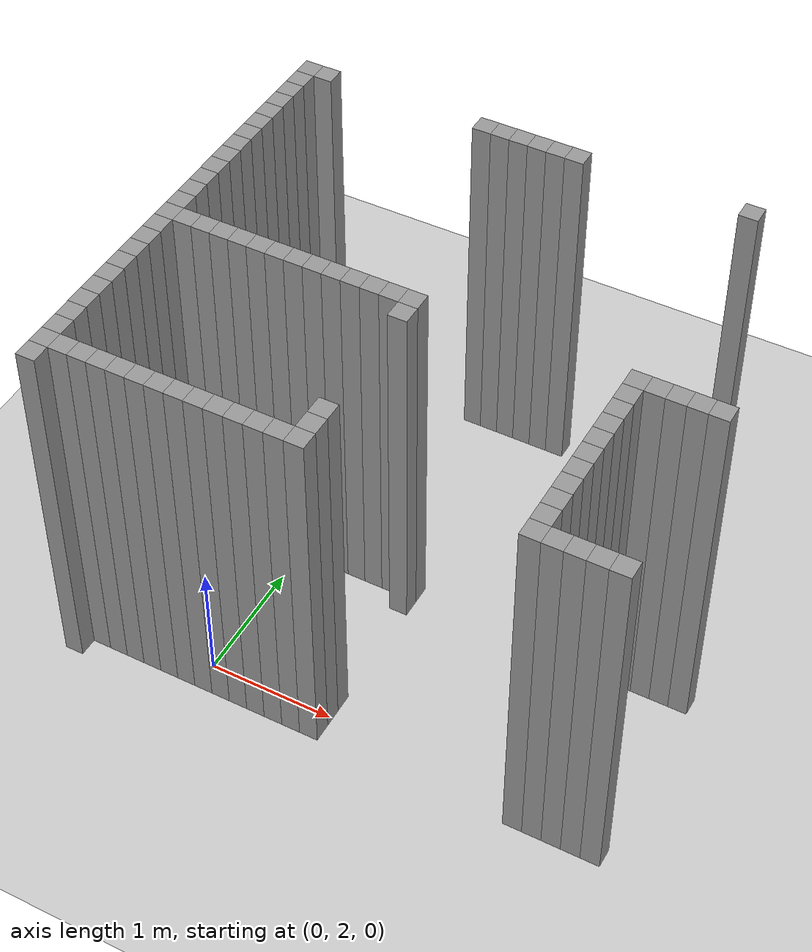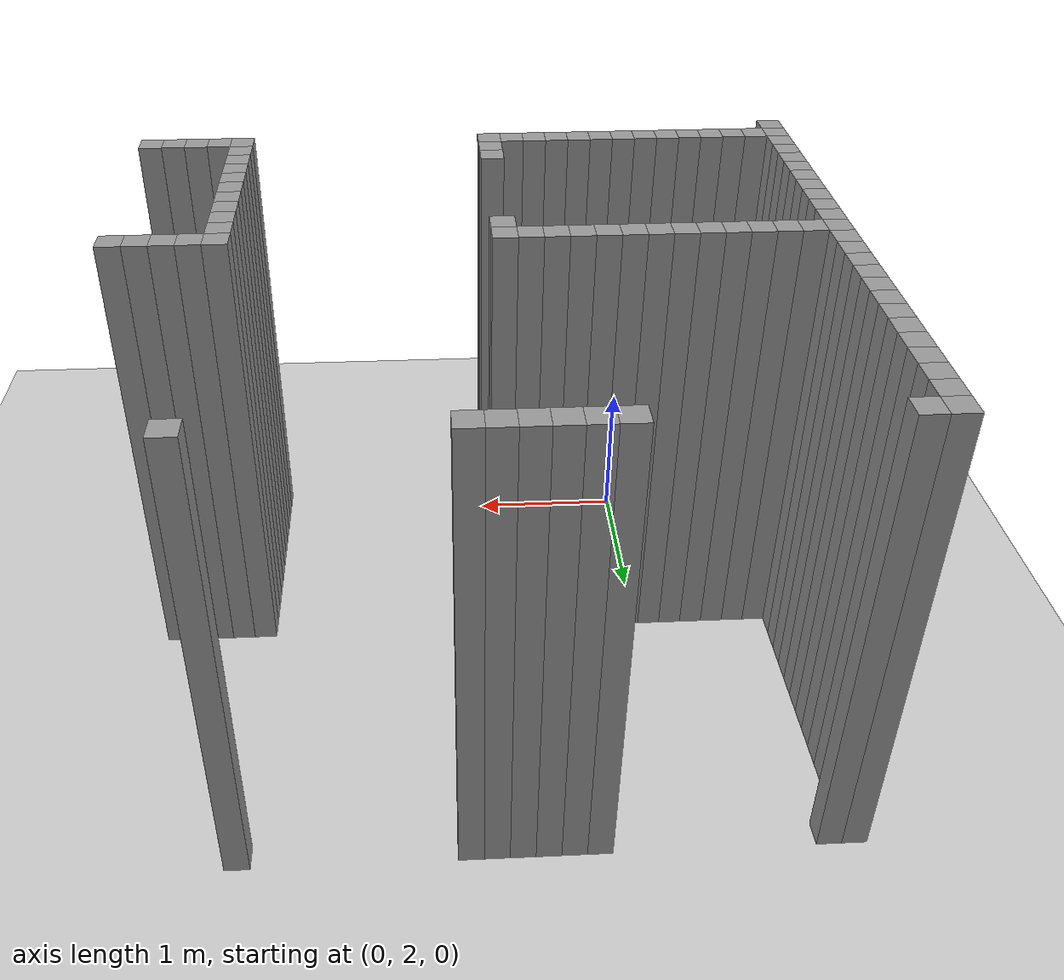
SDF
<sdf version="1.7">
 <world name="default">
  <model name="ground_plane">
   <static>1</static>
   <link name="link">
    <collision name="collision">
     <geometry><plane><normal>0 0 1</normal><size>100 100</size></plane></geometry>
     <surface>
      <contact><collide_bitmask>65535</collide_bitmask></contact>
      <friction><ode><mu>100</mu><mu2>50</mu2></ode></friction>
     </surface>
    </collision>
    <visual name="visual">
     <cast_shadows>0</cast_shadows>
     <geometry><plane><normal>0 0 1</normal><size>100 100</size></plane></geometry>
     <material>
      <script><uri>file://media/materials/scripts/gazebo.material</uri><name>Gazebo/Grey</name></script>
     </material>
    </visual>
   </link>
  </model>
  <model name="image45004">
   <pose>-1 -1 0 0 -0 0</pose>
   <link name="Wall_18">
    <collision name="Wall_18_Collision">
     <geometry><box><size>0.15 0.15 3</size></box></geometry>
     <pose>0 0 1.5 0 -0 0</pose>
    </collision>
    <visual name="Wall_18_Visual">
     <pose>0 0 1.5 0 -0 0</pose>
     <geometry><box><size>0.15 0.15 3</size></box></geometry>
     <material>
      <script><uri>file://media/materials/scripts/gazebo.material</uri><name>Gazebo/Grey</name></script>
      <ambient>1 1 1 1</ambient>
     </material>
     <meta><layer>0</layer></meta>
    </visual>
    <pose>0.0 2.6999999999999997 0 0 -0 0</pose>
   </link>
   <link name="Wall_19">
    <collision name="Wall_19_Collision">
     <geometry><box><size>0.15 0.15 3</size></box></geometry>
     <pose>0 0 1.5 0 -0 0</pose>
    </collision>
    <visual name="Wall_19_Visual">
     <pose>0 0 1.5 0 -0 0</pose>
     <geometry><box><size>0.15 0.15 3</size></box></geometry>
     <material>
      <script><uri>file://media/materials/scripts/gazebo.material</uri><name>Gazebo/Grey</name></script>
      <ambient>1 1 1 1</ambient>
     </material>
     <meta><layer>0</layer></meta>
    </visual>
    <pose>0.0 2.85 0 0 -0 0</pose>
   </link>
   <link name="Wall_20">
    <collision name="Wall_20_Collision">
     <geometry><box><size>0.15 0.15 3</size></box></geometry>
     <pose>0 0 1.5 0 -0 0</pose>
    </collision>
    <visual name="Wall_20_Visual">
     <pose>0 0 1.5 0 -0 0</pose>
     <geometry><box><size>0.15 0.15 3</size></box></geometry>
     <material>
      <script><uri>file://media/materials/scripts/gazebo.material</uri><name>Gazebo/Grey</name></script>
      <ambient>1 1 1 1</ambient>
     </material>
     <meta><layer>0</layer></meta>
    </visual>
    <pose>0.0 3.0 0 0 -0 0</pose>
   </link>
   <link name="Wall_21">
    <collision name="Wall_21_Collision">
     <geometry><box><size>0.15 0.15 3</size></box></geometry>
     <pose>0 0 1.5 0 -0 0</pose>
    </collision>
    <visual name="Wall_21_Visual">
     <pose>0 0 1.5 0 -0 0</pose>
     <geometry><box><size>0.15 0.15 3</size></box></geometry>
     <material>
      <script><uri>file://media/materials/scripts/gazebo.material</uri><name>Gazebo/Grey</name></script>
      <ambient>1 1 1 1</ambient>
     </material>
     <meta><layer>0</layer></meta>
    </visual>
    <pose>0.0 3.15 0 0 -0 0</pose>
   </link>
   <link name="Wall_22">
    <collision name="Wall_22_Collision">
     <geometry><box><size>0.15 0.15 3</size></box></geometry>
     <pose>0 0 1.5 0 -0 0</pose>
    </collision>
    <visual name="Wall_22_Visual">
     <pose>0 0 1.5 0 -0 0</pose>
     <geometry><box><size>0.15 0.15 3</size></box></geometry>
     <material>
      <script><uri>file://media/materials/scripts/gazebo.material</uri><name>Gazebo/Grey</name></script>
      <ambient>1 1 1 1</ambient>
     </material>
     <meta><layer>0</layer></meta>
    </visual>
    <pose>0.0 3.3 0 0 -0 0</pose>
   </link>
   <link name="Wall_23">
    <collision name="Wall_23_Collision">
     <geometry><box><size>0.15 0.15 3</size></box></geometry>
     <pose>0 0 1.5 0 -0 0</pose>
    </collision>
    <visual name="Wall_23_Visual">
     <pose>0 0 1.5 0 -0 0</pose>
     <geometry><box><size>0.15 0.15 3</size></box></geometry>
     <material>
      <script><uri>file://media/materials/scripts/gazebo.material</uri><name>Gazebo/Grey</name></script>
      <ambient>1 1 1 1</ambient>
     </material>
     <meta><layer>0</layer></meta>
    </visual>
    <pose>0.0 3.4499999999999997 0 0 -0 0</pose>
   </link>
   <link name="Wall_24">
    <collision name="Wall_24_Collision">
     <geometry><box><size>0.15 0.15 3</size></box></geometry>
     <pose>0 0 1.5 0 -0 0</pose>
    </collision>
    <visual name="Wall_24_Visual">
     <pose>0 0 1.5 0 -0 0</pose>
     <geometry><box><size>0.15 0.15 3</size></box></geometry>
     <material>
      <script><uri>file://media/materials/scripts/gazebo.material</uri><name>Gazebo/Grey</name></script>
      <ambient>1 1 1 1</ambient>
     </material>
     <meta><layer>0</layer></meta>
    </visual>
    <pose>0.0 3.5999999999999996 0 0 -0 0</pose>
   </link>
   <link name="Wall_25">
    <collision name="Wall_25_Collision">
     <geometry><box><size>0.15 0.15 3</size></box></geometry>
     <pose>0 0 1.5 0 -0 0</pose>
    </collision>
    <visual name="Wall_25_Visual">
     <pose>0 0 1.5 0 -0 0</pose>
     <geometry><box><size>0.15 0.15 3</size></box></geometry>
     <material>
      <script><uri>file://media/materials/scripts/gazebo.material</uri><name>Gazebo/Grey</name></script>
      <ambient>1 1 1 1</ambient>
     </material>
     <meta><layer>0</layer></meta>
    </visual>
    <pose>0.0 3.75 0 0 -0 0</pose>
   </link>
   <link name="Wall_26">
    <collision name="Wall_26_Collision">
     <geometry><box><size>0.15 0.15 3</size></box></geometry>
     <pose>0 0 1.5 0 -0 0</pose>
    </collision>
    <visual name="Wall_26_Visual">
     <pose>0 0 1.5 0 -0 0</pose>
     <geometry><box><size>0.15 0.15 3</size></box></geometry>
     <material>
      <script><uri>file://media/materials/scripts/gazebo.material</uri><name>Gazebo/Grey</name></script>
      <ambient>1 1 1 1</ambient>
     </material>
     <meta><layer>0</layer></meta>
    </visual>
    <pose>0.0 3.9 0 0 -0 0</pose>
   </link>
   <link name="Wall_27">
    <collision name="Wall_27_Collision">
     <geometry><box><size>0.15 0.15 3</size></box></geometry>
     <pose>0 0 1.5 0 -0 0</pose>
    </collision>
    <visual name="Wall_27_Visual">
     <pose>0 0 1.5 0 -0 0</pose>
     <geometry><box><size>0.15 0.15 3</size></box></geometry>
     <material>
      <script><uri>file://media/materials/scripts/gazebo.material</uri><name>Gazebo/Grey</name></script>
      <ambient>1 1 1 1</ambient>
     </material>
     <meta><layer>0</layer></meta>
    </visual>
    <pose>0.0 4.05 0 0 -0 0</pose>
   </link>
   <link name="Wall_28">
    <collision name="Wall_28_Collision">
     <geometry><box><size>0.15 0.15 3</size></box></geometry>
     <pose>0 0 1.5 0 -0 0</pose>
    </collision>
    <visual name="Wall_28_Visual">
     <pose>0 0 1.5 0 -0 0</pose>
     <geometry><box><size>0.15 0.15 3</size></box></geometry>
     <material>
      <script><uri>file://media/materials/scripts/gazebo.material</uri><name>Gazebo/Grey</name></script>
      <ambient>1 1 1 1</ambient>
     </material>
     <meta><layer>0</layer></meta>
    </visual>
    <pose>0.0 4.2 0 0 -0 0</pose>
   </link>
   <link name="Wall_29">
    <collision name="Wall_29_Collision">
     <geometry><box><size>0.15 0.15 3</size></box></geometry>
     <pose>0 0 1.5 0 -0 0</pose>
    </collision>
    <visual name="Wall_29_Visual">
     <pose>0 0 1.5 0 -0 0</pose>
     <geometry><box><size>0.15 0.15 3</size></box></geometry>
     <material>
      <script><uri>file://media/materials/scripts/gazebo.material</uri><name>Gazebo/Grey</name></script>
      <ambient>1 1 1 1</ambient>
     </material>
     <meta><layer>0</layer></meta>
    </visual>
    <pose>0.0 4.35 0 0 -0 0</pose>
   </link>
   <link name="Wall_30">
    <collision name="Wall_30_Collision">
     <geometry><box><size>0.15 0.15 3</size></box></geometry>
     <pose>0 0 1.5 0 -0 0</pose>
    </collision>
    <visual name="Wall_30_Visual">
     <pose>0 0 1.5 0 -0 0</pose>
     <geometry><box><size>0.15 0.15 3</size></box></geometry>
     <material>
      <script><uri>file://media/materials/scripts/gazebo.material</uri><name>Gazebo/Grey</name></script>
      <ambient>1 1 1 1</ambient>
     </material>
     <meta><layer>0</layer></meta>
    </visual>
    <pose>0.0 4.5 0 0 -0 0</pose>
   </link>
   <link name="Wall_31">
    <collision name="Wall_31_Collision">
     <geometry><box><size>0.15 0.15 3</size></box></geometry>
     <pose>0 0 1.5 0 -0 0</pose>
    </collision>
    <visual name="Wall_31_Visual">
     <pose>0 0 1.5 0 -0 0</pose>
     <geometry><box><size>0.15 0.15 3</size></box></geometry>
     <material>
      <script><uri>file://media/materials/scripts/gazebo.material</uri><name>Gazebo/Grey</name></script>
      <ambient>1 1 1 1</ambient>
     </material>
     <meta><layer>0</layer></meta>
    </visual>
    <pose>0.0 4.6499999999999995 0 0 -0 0</pose>
   </link>
   <link name="Wall_32">
    <collision name="Wall_32_Collision">
     <geometry><box><size>0.15 0.15 3</size></box></geometry>
     <pose>0 0 1.5 0 -0 0</pose>
    </collision>
    <visual name="Wall_32_Visual">
     <pose>0 0 1.5 0 -0 0</pose>
     <geometry><box><size>0.15 0.15 3</size></box></geometry>
     <material>
      <script><uri>file://media/materials/scripts/gazebo.material</uri><name>Gazebo/Grey</name></script>
      <ambient>1 1 1 1</ambient>
     </material>
     <meta><layer>0</layer></meta>
    </visual>
    <pose>0.0 4.8 0 0 -0 0</pose>
   </link>
   <link name="Wall_33">
    <collision name="Wall_33_Collision">
     <geometry><box><size>0.15 0.15 3</size></box></geometry>
     <pose>0 0 1.5 0 -0 0</pose>
    </collision>
    <visual name="Wall_33_Visual">
     <pose>0 0 1.5 0 -0 0</pose>
     <geometry><box><size>0.15 0.15 3</size></box></geometry>
     <material>
      <script><uri>file://media/materials/scripts/gazebo.material</uri><name>Gazebo/Grey</name></script>
      <ambient>1 1 1 1</ambient>
     </material>
     <meta><layer>0</layer></meta>
    </visual>
    <pose>0.0 4.95 0 0 -0 0</pose>
   </link>
   <link name="Wall_34">
    <collision name="Wall_34_Collision">
     <geometry><box><size>0.15 0.15 3</size></box></geometry>
     <pose>0 0 1.5 0 -0 0</pose>
    </collision>
    <visual name="Wall_34_Visual">
     <pose>0 0 1.5 0 -0 0</pose>
     <geometry><box><size>0.15 0.15 3</size></box></geometry>
     <material>
      <script><uri>file://media/materials/scripts/gazebo.material</uri><name>Gazebo/Grey</name></script>
      <ambient>1 1 1 1</ambient>
     </material>
     <meta><layer>0</layer></meta>
    </visual>
    <pose>0.0 5.1 0 0 -0 0</pose>
   </link>
   <link name="Wall_35">
    <collision name="Wall_35_Collision">
     <geometry><box><size>0.15 0.15 3</size></box></geometry>
     <pose>0 0 1.5 0 -0 0</pose>
    </collision>
    <visual name="Wall_35_Visual">
     <pose>0 0 1.5 0 -0 0</pose>
     <geometry><box><size>0.15 0.15 3</size></box></geometry>
     <material>
      <script><uri>file://media/materials/scripts/gazebo.material</uri><name>Gazebo/Grey</name></script>
      <ambient>1 1 1 1</ambient>
     </material>
     <meta><layer>0</layer></meta>
    </visual>
    <pose>0.0 5.25 0 0 -0 0</pose>
   </link>
   <link name="Wall_36">
    <collision name="Wall_36_Collision">
     <geometry><box><size>0.15 0.15 3</size></box></geometry>
     <pose>0 0 1.5 0 -0 0</pose>
    </collision>
    <visual name="Wall_36_Visual">
     <pose>0 0 1.5 0 -0 0</pose>
     <geometry><box><size>0.15 0.15 3</size></box></geometry>
     <material>
      <script><uri>file://media/materials/scripts/gazebo.material</uri><name>Gazebo/Grey</name></script>
      <ambient>1 1 1 1</ambient>
     </material>
     <meta><layer>0</layer></meta>
    </visual>
    <pose>0.0 5.3999999999999995 0 0 -0 0</pose>
   </link>
   <link name="Wall_37">
    <collision name="Wall_37_Collision">
     <geometry><box><size>0.15 0.15 3</size></box></geometry>
     <pose>0 0 1.5 0 -0 0</pose>
    </collision>
    <visual name="Wall_37_Visual">
     <pose>0 0 1.5 0 -0 0</pose>
     <geometry><box><size>0.15 0.15 3</size></box></geometry>
     <material>
      <script><uri>file://media/materials/scripts/gazebo.material</uri><name>Gazebo/Grey</name></script>
      <ambient>1 1 1 1</ambient>
     </material>
     <meta><layer>0</layer></meta>
    </visual>
    <pose>0.0 5.55 0 0 -0 0</pose>
   </link>
   <link name="Wall_38">
    <collision name="Wall_38_Collision">
     <geometry><box><size>0.15 0.15 3</size></box></geometry>
     <pose>0 0 1.5 0 -0 0</pose>
    </collision>
    <visual name="Wall_38_Visual">
     <pose>0 0 1.5 0 -0 0</pose>
     <geometry><box><size>0.15 0.15 3</size></box></geometry>
     <material>
      <script><uri>file://media/materials/scripts/gazebo.material</uri><name>Gazebo/Grey</name></script>
      <ambient>1 1 1 1</ambient>
     </material>
     <meta><layer>0</layer></meta>
    </visual>
    <pose>0.0 5.7 0 0 -0 0</pose>
   </link>
   <link name="Wall_39">
    <collision name="Wall_39_Collision">
     <geometry><box><size>0.15 0.15 3</size></box></geometry>
     <pose>0 0 1.5 0 -0 0</pose>
    </collision>
    <visual name="Wall_39_Visual">
     <pose>0 0 1.5 0 -0 0</pose>
     <geometry><box><size>0.15 0.15 3</size></box></geometry>
     <material>
      <script><uri>file://media/materials/scripts/gazebo.material</uri><name>Gazebo/Grey</name></script>
      <ambient>1 1 1 1</ambient>
     </material>
     <meta><layer>0</layer></meta>
    </visual>
    <pose>0.0 5.85 0 0 -0 0</pose>
   </link>
   <link name="Wall_40">
    <collision name="Wall_40_Collision">
     <geometry><box><size>0.15 0.15 3</size></box></geometry>
     <pose>0 0 1.5 0 -0 0</pose>
    </collision>
    <visual name="Wall_40_Visual">
     <pose>0 0 1.5 0 -0 0</pose>
     <geometry><box><size>0.15 0.15 3</size></box></geometry>
     <material>
      <script><uri>file://media/materials/scripts/gazebo.material</uri><name>Gazebo/Grey</name></script>
      <ambient>1 1 1 1</ambient>
     </material>
     <meta><layer>0</layer></meta>
    </visual>
    <pose>0.0 6.0 0 0 -0 0</pose>
   </link>
   <link name="Wall_41">
    <collision name="Wall_41_Collision">
     <geometry><box><size>0.15 0.15 3</size></box></geometry>
     <pose>0 0 1.5 0 -0 0</pose>
    </collision>
    <visual name="Wall_41_Visual">
     <pose>0 0 1.5 0 -0 0</pose>
     <geometry><box><size>0.15 0.15 3</size></box></geometry>
     <material>
      <script><uri>file://media/materials/scripts/gazebo.material</uri><name>Gazebo/Grey</name></script>
      <ambient>1 1 1 1</ambient>
     </material>
     <meta><layer>0</layer></meta>
    </visual>
    <pose>0.0 6.1499999999999995 0 0 -0 0</pose>
   </link>
   <link name="Wall_42">
    <collision name="Wall_42_Collision">
     <geometry><box><size>0.15 0.15 3</size></box></geometry>
     <pose>0 0 1.5 0 -0 0</pose>
    </collision>
    <visual name="Wall_42_Visual">
     <pose>0 0 1.5 0 -0 0</pose>
     <geometry><box><size>0.15 0.15 3</size></box></geometry>
     <material>
      <script><uri>file://media/materials/scripts/gazebo.material</uri><name>Gazebo/Grey</name></script>
      <ambient>1 1 1 1</ambient>
     </material>
     <meta><layer>0</layer></meta>
    </visual>
    <pose>0.0 6.3 0 0 -0 0</pose>
   </link>
   <link name="Wall_62">
    <collision name="Wall_62_Collision">
     <geometry><box><size>0.15 0.15 3</size></box></geometry>
     <pose>0 0 1.5 0 -0 0</pose>
    </collision>
    <visual name="Wall_62_Visual">
     <pose>0 0 1.5 0 -0 0</pose>
     <geometry><box><size>0.15 0.15 3</size></box></geometry>
     <material>
      <script><uri>file://media/materials/scripts/gazebo.material</uri><name>Gazebo/Grey</name></script>
      <ambient>1 1 1 1</ambient>
     </material>
     <meta><layer>0</layer></meta>
    </visual>
    <pose>0.15 2.85 0 0 -0 0</pose>
   </link>
   <link name="Wall_63">
    <collision name="Wall_63_Collision">
     <geometry><box><size>0.15 0.15 3</size></box></geometry>
     <pose>0 0 1.5 0 -0 0</pose>
    </collision>
    <visual name="Wall_63_Visual">
     <pose>0 0 1.5 0 -0 0</pose>
     <geometry><box><size>0.15 0.15 3</size></box></geometry>
     <material>
      <script><uri>file://media/materials/scripts/gazebo.material</uri><name>Gazebo/Grey</name></script>
      <ambient>1 1 1 1</ambient>
     </material>
     <meta><layer>0</layer></meta>
    </visual>
    <pose>0.15 4.35 0 0 -0 0</pose>
   </link>
   <link name="Wall_64">
    <collision name="Wall_64_Collision">
     <geometry><box><size>0.15 0.15 3</size></box></geometry>
     <pose>0 0 1.5 0 -0 0</pose>
    </collision>
    <visual name="Wall_64_Visual">
     <pose>0 0 1.5 0 -0 0</pose>
     <geometry><box><size>0.15 0.15 3</size></box></geometry>
     <material>
      <script><uri>file://media/materials/scripts/gazebo.material</uri><name>Gazebo/Grey</name></script>
      <ambient>1 1 1 1</ambient>
     </material>
     <meta><layer>0</layer></meta>
    </visual>
    <pose>0.15 6.3 0 0 -0 0</pose>
   </link>
   <link name="Wall_68">
    <collision name="Wall_68_Collision">
     <geometry><box><size>0.15 0.15 3</size></box></geometry>
     <pose>0 0 1.5 0 -0 0</pose>
    </collision>
    <visual name="Wall_68_Visual">
     <pose>0 0 1.5 0 -0 0</pose>
     <geometry><box><size>0.15 0.15 3</size></box></geometry>
     <material>
      <script><uri>file://media/materials/scripts/gazebo.material</uri><name>Gazebo/Grey</name></script>
      <ambient>1 1 1 1</ambient>
     </material>
     <meta><layer>0</layer></meta>
    </visual>
    <pose>0.3 2.85 0 0 -0 0</pose>
   </link>
   <link name="Wall_69">
    <collision name="Wall_69_Collision">
     <geometry><box><size>0.15 0.15 3</size></box></geometry>
     <pose>0 0 1.5 0 -0 0</pose>
    </collision>
    <visual name="Wall_69_Visual">
     <pose>0 0 1.5 0 -0 0</pose>
     <geometry><box><size>0.15 0.15 3</size></box></geometry>
     <material>
      <script><uri>file://media/materials/scripts/gazebo.material</uri><name>Gazebo/Grey</name></script>
      <ambient>1 1 1 1</ambient>
     </material>
     <meta><layer>0</layer></meta>
    </visual>
    <pose>0.3 4.35 0 0 -0 0</pose>
   </link>
   <link name="Wall_73">
    <collision name="Wall_73_Collision">
     <geometry><box><size>0.15 0.15 3</size></box></geometry>
     <pose>0 0 1.5 0 -0 0</pose>
    </collision>
    <visual name="Wall_73_Visual">
     <pose>0 0 1.5 0 -0 0</pose>
     <geometry><box><size>0.15 0.15 3</size></box></geometry>
     <material>
      <script><uri>file://media/materials/scripts/gazebo.material</uri><name>Gazebo/Grey</name></script>
      <ambient>1 1 1 1</ambient>
     </material>
     <meta><layer>0</layer></meta>
    </visual>
    <pose>0.44999999999999996 2.85 0 0 -0 0</pose>
   </link>
   <link name="Wall_74">
    <collision name="Wall_74_Collision">
     <geometry><box><size>0.15 0.15 3</size></box></geometry>
     <pose>0 0 1.5 0 -0 0</pose>
    </collision>
    <visual name="Wall_74_Visual">
     <pose>0 0 1.5 0 -0 0</pose>
     <geometry><box><size>0.15 0.15 3</size></box></geometry>
     <material>
      <script><uri>file://media/materials/scripts/gazebo.material</uri><name>Gazebo/Grey</name></script>
      <ambient>1 1 1 1</ambient>
     </material>
     <meta><layer>0</layer></meta>
    </visual>
    <pose>0.44999999999999996 4.35 0 0 -0 0</pose>
   </link>
   <link name="Wall_77">
    <collision name="Wall_77_Collision">
     <geometry><box><size>0.15 0.15 3</size></box></geometry>
     <pose>0 0 1.5 0 -0 0</pose>
    </collision>
    <visual name="Wall_77_Visual">
     <pose>0 0 1.5 0 -0 0</pose>
     <geometry><box><size>0.15 0.15 3</size></box></geometry>
     <material>
      <script><uri>file://media/materials/scripts/gazebo.material</uri><name>Gazebo/Grey</name></script>
      <ambient>1 1 1 1</ambient>
     </material>
     <meta><layer>0</layer></meta>
    </visual>
    <pose>0.6 2.85 0 0 -0 0</pose>
   </link>
   <link name="Wall_78">
    <collision name="Wall_78_Collision">
     <geometry><box><size>0.15 0.15 3</size></box></geometry>
     <pose>0 0 1.5 0 -0 0</pose>
    </collision>
    <visual name="Wall_78_Visual">
     <pose>0 0 1.5 0 -0 0</pose>
     <geometry><box><size>0.15 0.15 3</size></box></geometry>
     <material>
      <script><uri>file://media/materials/scripts/gazebo.material</uri><name>Gazebo/Grey</name></script>
      <ambient>1 1 1 1</ambient>
     </material>
     <meta><layer>0</layer></meta>
    </visual>
    <pose>0.6 4.35 0 0 -0 0</pose>
   </link>
   <link name="Wall_81">
    <collision name="Wall_81_Collision">
     <geometry><box><size>0.15 0.15 3</size></box></geometry>
     <pose>0 0 1.5 0 -0 0</pose>
    </collision>
    <visual name="Wall_81_Visual">
     <pose>0 0 1.5 0 -0 0</pose>
     <geometry><box><size>0.15 0.15 3</size></box></geometry>
     <material>
      <script><uri>file://media/materials/scripts/gazebo.material</uri><name>Gazebo/Grey</name></script>
      <ambient>1 1 1 1</ambient>
     </material>
     <meta><layer>0</layer></meta>
    </visual>
    <pose>0.75 2.85 0 0 -0 0</pose>
   </link>
   <link name="Wall_82">
    <collision name="Wall_82_Collision">
     <geometry><box><size>0.15 0.15 3</size></box></geometry>
     <pose>0 0 1.5 0 -0 0</pose>
    </collision>
    <visual name="Wall_82_Visual">
     <pose>0 0 1.5 0 -0 0</pose>
     <geometry><box><size>0.15 0.15 3</size></box></geometry>
     <material>
      <script><uri>file://media/materials/scripts/gazebo.material</uri><name>Gazebo/Grey</name></script>
      <ambient>1 1 1 1</ambient>
     </material>
     <meta><layer>0</layer></meta>
    </visual>
    <pose>0.75 4.35 0 0 -0 0</pose>
   </link>
   <link name="Wall_85">
    <collision name="Wall_85_Collision">
     <geometry><box><size>0.15 0.15 3</size></box></geometry>
     <pose>0 0 1.5 0 -0 0</pose>
    </collision>
    <visual name="Wall_85_Visual">
     <pose>0 0 1.5 0 -0 0</pose>
     <geometry><box><size>0.15 0.15 3</size></box></geometry>
     <material>
      <script><uri>file://media/materials/scripts/gazebo.material</uri><name>Gazebo/Grey</name></script>
      <ambient>1 1 1 1</ambient>
     </material>
     <meta><layer>0</layer></meta>
    </visual>
    <pose>0.8999999999999999 2.85 0 0 -0 0</pose>
   </link>
   <link name="Wall_86">
    <collision name="Wall_86_Collision">
     <geometry><box><size>0.15 0.15 3</size></box></geometry>
     <pose>0 0 1.5 0 -0 0</pose>
    </collision>
    <visual name="Wall_86_Visual">
     <pose>0 0 1.5 0 -0 0</pose>
     <geometry><box><size>0.15 0.15 3</size></box></geometry>
     <material>
      <script><uri>file://media/materials/scripts/gazebo.material</uri><name>Gazebo/Grey</name></script>
      <ambient>1 1 1 1</ambient>
     </material>
     <meta><layer>0</layer></meta>
    </visual>
    <pose>0.8999999999999999 4.35 0 0 -0 0</pose>
   </link>
   <link name="Wall_89">
    <collision name="Wall_89_Collision">
     <geometry><box><size>0.15 0.15 3</size></box></geometry>
     <pose>0 0 1.5 0 -0 0</pose>
    </collision>
    <visual name="Wall_89_Visual">
     <pose>0 0 1.5 0 -0 0</pose>
     <geometry><box><size>0.15 0.15 3</size></box></geometry>
     <material>
      <script><uri>file://media/materials/scripts/gazebo.material</uri><name>Gazebo/Grey</name></script>
      <ambient>1 1 1 1</ambient>
     </material>
     <meta><layer>0</layer></meta>
    </visual>
    <pose>1.05 2.85 0 0 -0 0</pose>
   </link>
   <link name="Wall_90">
    <collision name="Wall_90_Collision">
     <geometry><box><size>0.15 0.15 3</size></box></geometry>
     <pose>0 0 1.5 0 -0 0</pose>
    </collision>
    <visual name="Wall_90_Visual">
     <pose>0 0 1.5 0 -0 0</pose>
     <geometry><box><size>0.15 0.15 3</size></box></geometry>
     <material>
      <script><uri>file://media/materials/scripts/gazebo.material</uri><name>Gazebo/Grey</name></script>
      <ambient>1 1 1 1</ambient>
     </material>
     <meta><layer>0</layer></meta>
    </visual>
    <pose>1.05 4.35 0 0 -0 0</pose>
   </link>
   <link name="Wall_93">
    <collision name="Wall_93_Collision">
     <geometry><box><size>0.15 0.15 3</size></box></geometry>
     <pose>0 0 1.5 0 -0 0</pose>
    </collision>
    <visual name="Wall_93_Visual">
     <pose>0 0 1.5 0 -0 0</pose>
     <geometry><box><size>0.15 0.15 3</size></box></geometry>
     <material>
      <script><uri>file://media/materials/scripts/gazebo.material</uri><name>Gazebo/Grey</name></script>
      <ambient>1 1 1 1</ambient>
     </material>
     <meta><layer>0</layer></meta>
    </visual>
    <pose>1.2 2.85 0 0 -0 0</pose>
   </link>
   <link name="Wall_94">
    <collision name="Wall_94_Collision">
     <geometry><box><size>0.15 0.15 3</size></box></geometry>
     <pose>0 0 1.5 0 -0 0</pose>
    </collision>
    <visual name="Wall_94_Visual">
     <pose>0 0 1.5 0 -0 0</pose>
     <geometry><box><size>0.15 0.15 3</size></box></geometry>
     <material>
      <script><uri>file://media/materials/scripts/gazebo.material</uri><name>Gazebo/Grey</name></script>
      <ambient>1 1 1 1</ambient>
     </material>
     <meta><layer>0</layer></meta>
    </visual>
    <pose>1.2 4.35 0 0 -0 0</pose>
   </link>
   <link name="Wall_97">
    <collision name="Wall_97_Collision">
     <geometry><box><size>0.15 0.15 3</size></box></geometry>
     <pose>0 0 1.5 0 -0 0</pose>
    </collision>
    <visual name="Wall_97_Visual">
     <pose>0 0 1.5 0 -0 0</pose>
     <geometry><box><size>0.15 0.15 3</size></box></geometry>
     <material>
      <script><uri>file://media/materials/scripts/gazebo.material</uri><name>Gazebo/Grey</name></script>
      <ambient>1 1 1 1</ambient>
     </material>
     <meta><layer>0</layer></meta>
    </visual>
    <pose>1.3499999999999999 2.85 0 0 -0 0</pose>
   </link>
   <link name="Wall_98">
    <collision name="Wall_98_Collision">
     <geometry><box><size>0.15 0.15 3</size></box></geometry>
     <pose>0 0 1.5 0 -0 0</pose>
    </collision>
    <visual name="Wall_98_Visual">
     <pose>0 0 1.5 0 -0 0</pose>
     <geometry><box><size>0.15 0.15 3</size></box></geometry>
     <material>
      <script><uri>file://media/materials/scripts/gazebo.material</uri><name>Gazebo/Grey</name></script>
      <ambient>1 1 1 1</ambient>
     </material>
     <meta><layer>0</layer></meta>
    </visual>
    <pose>1.3499999999999999 4.35 0 0 -0 0</pose>
   </link>
   <link name="Wall_101">
    <collision name="Wall_101_Collision">
     <geometry><box><size>0.15 0.15 3</size></box></geometry>
     <pose>0 0 1.5 0 -0 0</pose>
    </collision>
    <visual name="Wall_101_Visual">
     <pose>0 0 1.5 0 -0 0</pose>
     <geometry><box><size>0.15 0.15 3</size></box></geometry>
     <material>
      <script><uri>file://media/materials/scripts/gazebo.material</uri><name>Gazebo/Grey</name></script>
      <ambient>1 1 1 1</ambient>
     </material>
     <meta><layer>0</layer></meta>
    </visual>
    <pose>1.5 2.85 0 0 -0 0</pose>
   </link>
   <link name="Wall_102">
    <collision name="Wall_102_Collision">
     <geometry><box><size>0.15 0.15 3</size></box></geometry>
     <pose>0 0 1.5 0 -0 0</pose>
    </collision>
    <visual name="Wall_102_Visual">
     <pose>0 0 1.5 0 -0 0</pose>
     <geometry><box><size>0.15 0.15 3</size></box></geometry>
     <material>
      <script><uri>file://media/materials/scripts/gazebo.material</uri><name>Gazebo/Grey</name></script>
      <ambient>1 1 1 1</ambient>
     </material>
     <meta><layer>0</layer></meta>
    </visual>
    <pose>1.5 4.35 0 0 -0 0</pose>
   </link>
   <link name="Wall_103">
    <collision name="Wall_103_Collision">
     <geometry><box><size>0.15 0.15 3</size></box></geometry>
     <pose>0 0 1.5 0 -0 0</pose>
    </collision>
    <visual name="Wall_103_Visual">
     <pose>0 0 1.5 0 -0 0</pose>
     <geometry><box><size>0.15 0.15 3</size></box></geometry>
     <material>
      <script><uri>file://media/materials/scripts/gazebo.material</uri><name>Gazebo/Grey</name></script>
      <ambient>1 1 1 1</ambient>
     </material>
     <meta><layer>0</layer></meta>
    </visual>
    <pose>1.5 6.3 0 0 -0 0</pose>
   </link>
   <link name="Wall_106">
    <collision name="Wall_106_Collision">
     <geometry><box><size>0.15 0.15 3</size></box></geometry>
     <pose>0 0 1.5 0 -0 0</pose>
    </collision>
    <visual name="Wall_106_Visual">
     <pose>0 0 1.5 0 -0 0</pose>
     <geometry><box><size>0.15 0.15 3</size></box></geometry>
     <material>
      <script><uri>file://media/materials/scripts/gazebo.material</uri><name>Gazebo/Grey</name></script>
      <ambient>1 1 1 1</ambient>
     </material>
     <meta><layer>0</layer></meta>
    </visual>
    <pose>1.65 2.85 0 0 -0 0</pose>
   </link>
   <link name="Wall_107">
    <collision name="Wall_107_Collision">
     <geometry><box><size>0.15 0.15 3</size></box></geometry>
     <pose>0 0 1.5 0 -0 0</pose>
    </collision>
    <visual name="Wall_107_Visual">
     <pose>0 0 1.5 0 -0 0</pose>
     <geometry><box><size>0.15 0.15 3</size></box></geometry>
     <material>
      <script><uri>file://media/materials/scripts/gazebo.material</uri><name>Gazebo/Grey</name></script>
      <ambient>1 1 1 1</ambient>
     </material>
     <meta><layer>0</layer></meta>
    </visual>
    <pose>1.65 4.35 0 0 -0 0</pose>
   </link>
   <link name="Wall_108">
    <collision name="Wall_108_Collision">
     <geometry><box><size>0.15 0.15 3</size></box></geometry>
     <pose>0 0 1.5 0 -0 0</pose>
    </collision>
    <visual name="Wall_108_Visual">
     <pose>0 0 1.5 0 -0 0</pose>
     <geometry><box><size>0.15 0.15 3</size></box></geometry>
     <material>
      <script><uri>file://media/materials/scripts/gazebo.material</uri><name>Gazebo/Grey</name></script>
      <ambient>1 1 1 1</ambient>
     </material>
     <meta><layer>0</layer></meta>
    </visual>
    <pose>1.65 6.3 0 0 -0 0</pose>
   </link>
   <link name="Wall_122">
    <collision name="Wall_122_Collision">
     <geometry><box><size>0.15 0.15 3</size></box></geometry>
     <pose>0 0 1.5 0 -0 0</pose>
    </collision>
    <visual name="Wall_122_Visual">
     <pose>0 0 1.5 0 -0 0</pose>
     <geometry><box><size>0.15 0.15 3</size></box></geometry>
     <material>
      <script><uri>file://media/materials/scripts/gazebo.material</uri><name>Gazebo/Grey</name></script>
      <ambient>1 1 1 1</ambient>
     </material>
     <meta><layer>0</layer></meta>
    </visual>
    <pose>1.7999999999999998 2.85 0 0 -0 0</pose>
   </link>
   <link name="Wall_123">
    <collision name="Wall_123_Collision">
     <geometry><box><size>0.15 0.15 3</size></box></geometry>
     <pose>0 0 1.5 0 -0 0</pose>
    </collision>
    <visual name="Wall_123_Visual">
     <pose>0 0 1.5 0 -0 0</pose>
     <geometry><box><size>0.15 0.15 3</size></box></geometry>
     <material>
      <script><uri>file://media/materials/scripts/gazebo.material</uri><name>Gazebo/Grey</name></script>
      <ambient>1 1 1 1</ambient>
     </material>
     <meta><layer>0</layer></meta>
    </visual>
    <pose>1.7999999999999998 4.35 0 0 -0 0</pose>
   </link>
   <link name="Wall_124">
    <collision name="Wall_124_Collision">
     <geometry><box><size>0.15 0.15 3</size></box></geometry>
     <pose>0 0 1.5 0 -0 0</pose>
    </collision>
    <visual name="Wall_124_Visual">
     <pose>0 0 1.5 0 -0 0</pose>
     <geometry><box><size>0.15 0.15 3</size></box></geometry>
     <material>
      <script><uri>file://media/materials/scripts/gazebo.material</uri><name>Gazebo/Grey</name></script>
      <ambient>1 1 1 1</ambient>
     </material>
     <meta><layer>0</layer></meta>
    </visual>
    <pose>1.7999999999999998 6.3 0 0 -0 0</pose>
   </link>
   <link name="Wall_144">
    <collision name="Wall_144_Collision">
     <geometry><box><size>0.15 0.15 3</size></box></geometry>
     <pose>0 0 1.5 0 -0 0</pose>
    </collision>
    <visual name="Wall_144_Visual">
     <pose>0 0 1.5 0 -0 0</pose>
     <geometry><box><size>0.15 0.15 3</size></box></geometry>
     <material>
      <script><uri>file://media/materials/scripts/gazebo.material</uri><name>Gazebo/Grey</name></script>
      <ambient>1 1 1 1</ambient>
     </material>
     <meta><layer>0</layer></meta>
    </visual>
    <pose>1.95 2.85 0 0 -0 0</pose>
   </link>
   <link name="Wall_145">
    <collision name="Wall_145_Collision">
     <geometry><box><size>0.15 0.15 3</size></box></geometry>
     <pose>0 0 1.5 0 -0 0</pose>
    </collision>
    <visual name="Wall_145_Visual">
     <pose>0 0 1.5 0 -0 0</pose>
     <geometry><box><size>0.15 0.15 3</size></box></geometry>
     <material>
      <script><uri>file://media/materials/scripts/gazebo.material</uri><name>Gazebo/Grey</name></script>
      <ambient>1 1 1 1</ambient>
     </material>
     <meta><layer>0</layer></meta>
    </visual>
    <pose>1.95 3.0 0 0 -0 0</pose>
   </link>
   <link name="Wall_146">
    <collision name="Wall_146_Collision">
     <geometry><box><size>0.15 0.15 3</size></box></geometry>
     <pose>0 0 1.5 0 -0 0</pose>
    </collision>
    <visual name="Wall_146_Visual">
     <pose>0 0 1.5 0 -0 0</pose>
     <geometry><box><size>0.15 0.15 3</size></box></geometry>
     <material>
      <script><uri>file://media/materials/scripts/gazebo.material</uri><name>Gazebo/Grey</name></script>
      <ambient>1 1 1 1</ambient>
     </material>
     <meta><layer>0</layer></meta>
    </visual>
    <pose>1.95 3.15 0 0 -0 0</pose>
   </link>
   <link name="Wall_147">
    <collision name="Wall_147_Collision">
     <geometry><box><size>0.15 0.15 3</size></box></geometry>
     <pose>0 0 1.5 0 -0 0</pose>
    </collision>
    <visual name="Wall_147_Visual">
     <pose>0 0 1.5 0 -0 0</pose>
     <geometry><box><size>0.15 0.15 3</size></box></geometry>
     <material>
      <script><uri>file://media/materials/scripts/gazebo.material</uri><name>Gazebo/Grey</name></script>
      <ambient>1 1 1 1</ambient>
     </material>
     <meta><layer>0</layer></meta>
    </visual>
    <pose>1.95 4.2 0 0 -0 0</pose>
   </link>
   <link name="Wall_148">
    <collision name="Wall_148_Collision">
     <geometry><box><size>0.15 0.15 3</size></box></geometry>
     <pose>0 0 1.5 0 -0 0</pose>
    </collision>
    <visual name="Wall_148_Visual">
     <pose>0 0 1.5 0 -0 0</pose>
     <geometry><box><size>0.15 0.15 3</size></box></geometry>
     <material>
      <script><uri>file://media/materials/scripts/gazebo.material</uri><name>Gazebo/Grey</name></script>
      <ambient>1 1 1 1</ambient>
     </material>
     <meta><layer>0</layer></meta>
    </visual>
    <pose>1.95 4.35 0 0 -0 0</pose>
   </link>
   <link name="Wall_149">
    <collision name="Wall_149_Collision">
     <geometry><box><size>0.15 0.15 3</size></box></geometry>
     <pose>0 0 1.5 0 -0 0</pose>
    </collision>
    <visual name="Wall_149_Visual">
     <pose>0 0 1.5 0 -0 0</pose>
     <geometry><box><size>0.15 0.15 3</size></box></geometry>
     <material>
      <script><uri>file://media/materials/scripts/gazebo.material</uri><name>Gazebo/Grey</name></script>
      <ambient>1 1 1 1</ambient>
     </material>
     <meta><layer>0</layer></meta>
    </visual>
    <pose>1.95 6.3 0 0 -0 0</pose>
   </link>
   <link name="Wall_153">
    <collision name="Wall_153_Collision">
     <geometry><box><size>0.15 0.15 3</size></box></geometry>
     <pose>0 0 1.5 0 -0 0</pose>
    </collision>
    <visual name="Wall_153_Visual">
     <pose>0 0 1.5 0 -0 0</pose>
     <geometry><box><size>0.15 0.15 3</size></box></geometry>
     <material>
      <script><uri>file://media/materials/scripts/gazebo.material</uri><name>Gazebo/Grey</name></script>
      <ambient>1 1 1 1</ambient>
     </material>
     <meta><layer>0</layer></meta>
    </visual>
    <pose>2.1 6.3 0 0 -0 0</pose>
   </link>
   <link name="Wall_157">
    <collision name="Wall_157_Collision">
     <geometry><box><size>0.15 0.15 3</size></box></geometry>
     <pose>0 0 1.5 0 -0 0</pose>
    </collision>
    <visual name="Wall_157_Visual">
     <pose>0 0 1.5 0 -0 0</pose>
     <geometry><box><size>0.15 0.15 3</size></box></geometry>
     <material>
      <script><uri>file://media/materials/scripts/gazebo.material</uri><name>Gazebo/Grey</name></script>
      <ambient>1 1 1 1</ambient>
     </material>
     <meta><layer>0</layer></meta>
    </visual>
    <pose>2.25 6.3 0 0 -0 0</pose>
   </link>
   <link name="Wall_179">
    <collision name="Wall_179_Collision">
     <geometry><box><size>0.15 0.15 3</size></box></geometry>
     <pose>0 0 1.5 0 -0 0</pose>
    </collision>
    <visual name="Wall_179_Visual">
     <pose>0 0 1.5 0 -0 0</pose>
     <geometry><box><size>0.15 0.15 3</size></box></geometry>
     <material>
      <script><uri>file://media/materials/scripts/gazebo.material</uri><name>Gazebo/Grey</name></script>
      <ambient>1 1 1 1</ambient>
     </material>
     <meta><layer>0</layer></meta>
    </visual>
    <pose>3.5999999999999996 2.85 0 0 -0 0</pose>
   </link>
   <link name="Wall_180">
    <collision name="Wall_180_Collision">
     <geometry><box><size>0.15 0.15 3</size></box></geometry>
     <pose>0 0 1.5 0 -0 0</pose>
    </collision>
    <visual name="Wall_180_Visual">
     <pose>0 0 1.5 0 -0 0</pose>
     <geometry><box><size>0.15 0.15 3</size></box></geometry>
     <material>
      <script><uri>file://media/materials/scripts/gazebo.material</uri><name>Gazebo/Grey</name></script>
      <ambient>1 1 1 1</ambient>
     </material>
     <meta><layer>0</layer></meta>
    </visual>
    <pose>3.5999999999999996 3.0 0 0 -0 0</pose>
   </link>
   <link name="Wall_181">
    <collision name="Wall_181_Collision">
     <geometry><box><size>0.15 0.15 3</size></box></geometry>
     <pose>0 0 1.5 0 -0 0</pose>
    </collision>
    <visual name="Wall_181_Visual">
     <pose>0 0 1.5 0 -0 0</pose>
     <geometry><box><size>0.15 0.15 3</size></box></geometry>
     <material>
      <script><uri>file://media/materials/scripts/gazebo.material</uri><name>Gazebo/Grey</name></script>
      <ambient>1 1 1 1</ambient>
     </material>
     <meta><layer>0</layer></meta>
    </visual>
    <pose>3.5999999999999996 3.15 0 0 -0 0</pose>
   </link>
   <link name="Wall_182">
    <collision name="Wall_182_Collision">
     <geometry><box><size>0.15 0.15 3</size></box></geometry>
     <pose>0 0 1.5 0 -0 0</pose>
    </collision>
    <visual name="Wall_182_Visual">
     <pose>0 0 1.5 0 -0 0</pose>
     <geometry><box><size>0.15 0.15 3</size></box></geometry>
     <material>
      <script><uri>file://media/materials/scripts/gazebo.material</uri><name>Gazebo/Grey</name></script>
      <ambient>1 1 1 1</ambient>
     </material>
     <meta><layer>0</layer></meta>
    </visual>
    <pose>3.5999999999999996 3.3 0 0 -0 0</pose>
   </link>
   <link name="Wall_183">
    <collision name="Wall_183_Collision">
     <geometry><box><size>0.15 0.15 3</size></box></geometry>
     <pose>0 0 1.5 0 -0 0</pose>
    </collision>
    <visual name="Wall_183_Visual">
     <pose>0 0 1.5 0 -0 0</pose>
     <geometry><box><size>0.15 0.15 3</size></box></geometry>
     <material>
      <script><uri>file://media/materials/scripts/gazebo.material</uri><name>Gazebo/Grey</name></script>
      <ambient>1 1 1 1</ambient>
     </material>
     <meta><layer>0</layer></meta>
    </visual>
    <pose>3.5999999999999996 3.4499999999999997 0 0 -0 0</pose>
   </link>
   <link name="Wall_184">
    <collision name="Wall_184_Collision">
     <geometry><box><size>0.15 0.15 3</size></box></geometry>
     <pose>0 0 1.5 0 -0 0</pose>
    </collision>
    <visual name="Wall_184_Visual">
     <pose>0 0 1.5 0 -0 0</pose>
     <geometry><box><size>0.15 0.15 3</size></box></geometry>
     <material>
      <script><uri>file://media/materials/scripts/gazebo.material</uri><name>Gazebo/Grey</name></script>
      <ambient>1 1 1 1</ambient>
     </material>
     <meta><layer>0</layer></meta>
    </visual>
    <pose>3.5999999999999996 3.5999999999999996 0 0 -0 0</pose>
   </link>
   <link name="Wall_185">
    <collision name="Wall_185_Collision">
     <geometry><box><size>0.15 0.15 3</size></box></geometry>
     <pose>0 0 1.5 0 -0 0</pose>
    </collision>
    <visual name="Wall_185_Visual">
     <pose>0 0 1.5 0 -0 0</pose>
     <geometry><box><size>0.15 0.15 3</size></box></geometry>
     <material>
      <script><uri>file://media/materials/scripts/gazebo.material</uri><name>Gazebo/Grey</name></script>
      <ambient>1 1 1 1</ambient>
     </material>
     <meta><layer>0</layer></meta>
    </visual>
    <pose>3.5999999999999996 3.75 0 0 -0 0</pose>
   </link>
   <link name="Wall_186">
    <collision name="Wall_186_Collision">
     <geometry><box><size>0.15 0.15 3</size></box></geometry>
     <pose>0 0 1.5 0 -0 0</pose>
    </collision>
    <visual name="Wall_186_Visual">
     <pose>0 0 1.5 0 -0 0</pose>
     <geometry><box><size>0.15 0.15 3</size></box></geometry>
     <material>
      <script><uri>file://media/materials/scripts/gazebo.material</uri><name>Gazebo/Grey</name></script>
      <ambient>1 1 1 1</ambient>
     </material>
     <meta><layer>0</layer></meta>
    </visual>
    <pose>3.5999999999999996 3.9 0 0 -0 0</pose>
   </link>
   <link name="Wall_187">
    <collision name="Wall_187_Collision">
     <geometry><box><size>0.15 0.15 3</size></box></geometry>
     <pose>0 0 1.5 0 -0 0</pose>
    </collision>
    <visual name="Wall_187_Visual">
     <pose>0 0 1.5 0 -0 0</pose>
     <geometry><box><size>0.15 0.15 3</size></box></geometry>
     <material>
      <script><uri>file://media/materials/scripts/gazebo.material</uri><name>Gazebo/Grey</name></script>
      <ambient>1 1 1 1</ambient>
     </material>
     <meta><layer>0</layer></meta>
    </visual>
    <pose>3.5999999999999996 4.05 0 0 -0 0</pose>
   </link>
   <link name="Wall_188">
    <collision name="Wall_188_Collision">
     <geometry><box><size>0.15 0.15 3</size></box></geometry>
     <pose>0 0 1.5 0 -0 0</pose>
    </collision>
    <visual name="Wall_188_Visual">
     <pose>0 0 1.5 0 -0 0</pose>
     <geometry><box><size>0.15 0.15 3</size></box></geometry>
     <material>
      <script><uri>file://media/materials/scripts/gazebo.material</uri><name>Gazebo/Grey</name></script>
      <ambient>1 1 1 1</ambient>
     </material>
     <meta><layer>0</layer></meta>
    </visual>
    <pose>3.5999999999999996 4.2 0 0 -0 0</pose>
   </link>
   <link name="Wall_189">
    <collision name="Wall_189_Collision">
     <geometry><box><size>0.15 0.15 3</size></box></geometry>
     <pose>0 0 1.5 0 -0 0</pose>
    </collision>
    <visual name="Wall_189_Visual">
     <pose>0 0 1.5 0 -0 0</pose>
     <geometry><box><size>0.15 0.15 3</size></box></geometry>
     <material>
      <script><uri>file://media/materials/scripts/gazebo.material</uri><name>Gazebo/Grey</name></script>
      <ambient>1 1 1 1</ambient>
     </material>
     <meta><layer>0</layer></meta>
    </visual>
    <pose>3.5999999999999996 4.35 0 0 -0 0</pose>
   </link>
   <link name="Wall_190">
    <collision name="Wall_190_Collision">
     <geometry><box><size>0.15 0.15 3</size></box></geometry>
     <pose>0 0 1.5 0 -0 0</pose>
    </collision>
    <visual name="Wall_190_Visual">
     <pose>0 0 1.5 0 -0 0</pose>
     <geometry><box><size>0.15 0.15 3</size></box></geometry>
     <material>
      <script><uri>file://media/materials/scripts/gazebo.material</uri><name>Gazebo/Grey</name></script>
      <ambient>1 1 1 1</ambient>
     </material>
     <meta><layer>0</layer></meta>
    </visual>
    <pose>3.5999999999999996 6.3 0 0 -0 0</pose>
   </link>
   <link name="Wall_194">
    <collision name="Wall_194_Collision">
     <geometry><box><size>0.15 0.15 3</size></box></geometry>
     <pose>0 0 1.5 0 -0 0</pose>
    </collision>
    <visual name="Wall_194_Visual">
     <pose>0 0 1.5 0 -0 0</pose>
     <geometry><box><size>0.15 0.15 3</size></box></geometry>
     <material>
      <script><uri>file://media/materials/scripts/gazebo.material</uri><name>Gazebo/Grey</name></script>
      <ambient>1 1 1 1</ambient>
     </material>
     <meta><layer>0</layer></meta>
    </visual>
    <pose>3.75 2.85 0 0 -0 0</pose>
   </link>
   <link name="Wall_195">
    <collision name="Wall_195_Collision">
     <geometry><box><size>0.15 0.15 3</size></box></geometry>
     <pose>0 0 1.5 0 -0 0</pose>
    </collision>
    <visual name="Wall_195_Visual">
     <pose>0 0 1.5 0 -0 0</pose>
     <geometry><box><size>0.15 0.15 3</size></box></geometry>
     <material>
      <script><uri>file://media/materials/scripts/gazebo.material</uri><name>Gazebo/Grey</name></script>
      <ambient>1 1 1 1</ambient>
     </material>
     <meta><layer>0</layer></meta>
    </visual>
    <pose>3.75 4.35 0 0 -0 0</pose>
   </link>
   <link name="Wall_210">
    <collision name="Wall_210_Collision">
     <geometry><box><size>0.15 0.15 3</size></box></geometry>
     <pose>0 0 1.5 0 -0 0</pose>
    </collision>
    <visual name="Wall_210_Visual">
     <pose>0 0 1.5 0 -0 0</pose>
     <geometry><box><size>0.15 0.15 3</size></box></geometry>
     <material>
      <script><uri>file://media/materials/scripts/gazebo.material</uri><name>Gazebo/Grey</name></script>
      <ambient>1 1 1 1</ambient>
     </material>
     <meta><layer>0</layer></meta>
    </visual>
    <pose>3.9 2.85 0 0 -0 0</pose>
   </link>
   <link name="Wall_211">
    <collision name="Wall_211_Collision">
     <geometry><box><size>0.15 0.15 3</size></box></geometry>
     <pose>0 0 1.5 0 -0 0</pose>
    </collision>
    <visual name="Wall_211_Visual">
     <pose>0 0 1.5 0 -0 0</pose>
     <geometry><box><size>0.15 0.15 3</size></box></geometry>
     <material>
      <script><uri>file://media/materials/scripts/gazebo.material</uri><name>Gazebo/Grey</name></script>
      <ambient>1 1 1 1</ambient>
     </material>
     <meta><layer>0</layer></meta>
    </visual>
    <pose>3.9 4.35 0 0 -0 0</pose>
   </link>
   <link name="Wall_216">
    <collision name="Wall_216_Collision">
     <geometry><box><size>0.15 0.15 3</size></box></geometry>
     <pose>0 0 1.5 0 -0 0</pose>
    </collision>
    <visual name="Wall_216_Visual">
     <pose>0 0 1.5 0 -0 0</pose>
     <geometry><box><size>0.15 0.15 3</size></box></geometry>
     <material>
      <script><uri>file://media/materials/scripts/gazebo.material</uri><name>Gazebo/Grey</name></script>
      <ambient>1 1 1 1</ambient>
     </material>
     <meta><layer>0</layer></meta>
    </visual>
    <pose>4.05 2.85 0 0 -0 0</pose>
   </link>
   <link name="Wall_217">
    <collision name="Wall_217_Collision">
     <geometry><box><size>0.15 0.15 3</size></box></geometry>
     <pose>0 0 1.5 0 -0 0</pose>
    </collision>
    <visual name="Wall_217_Visual">
     <pose>0 0 1.5 0 -0 0</pose>
     <geometry><box><size>0.15 0.15 3</size></box></geometry>
     <material>
      <script><uri>file://media/materials/scripts/gazebo.material</uri><name>Gazebo/Grey</name></script>
      <ambient>1 1 1 1</ambient>
     </material>
     <meta><layer>0</layer></meta>
    </visual>
    <pose>4.05 4.35 0 0 -0 0</pose>
   </link>
   <link name="Wall_222">
    <collision name="Wall_222_Collision">
     <geometry><box><size>0.15 0.15 3</size></box></geometry>
     <pose>0 0 1.5 0 -0 0</pose>
    </collision>
    <visual name="Wall_222_Visual">
     <pose>0 0 1.5 0 -0 0</pose>
     <geometry><box><size>0.15 0.15 3</size></box></geometry>
     <material>
      <script><uri>file://media/materials/scripts/gazebo.material</uri><name>Gazebo/Grey</name></script>
      <ambient>1 1 1 1</ambient>
     </material>
     <meta><layer>0</layer></meta>
    </visual>
    <pose>4.2 2.85 0 0 -0 0</pose>
   </link>
   <link name="Wall_223">
    <collision name="Wall_223_Collision">
     <geometry><box><size>0.15 0.15 3</size></box></geometry>
     <pose>0 0 1.5 0 -0 0</pose>
    </collision>
    <visual name="Wall_223_Visual">
     <pose>0 0 1.5 0 -0 0</pose>
     <geometry><box><size>0.15 0.15 3</size></box></geometry>
     <material>
      <script><uri>file://media/materials/scripts/gazebo.material</uri><name>Gazebo/Grey</name></script>
      <ambient>1 1 1 1</ambient>
     </material>
     <meta><layer>0</layer></meta>
    </visual>
    <pose>4.2 4.35 0 0 -0 0</pose>
   </link>
   <static>1</static>
  </model>
 </world>
</sdf>
